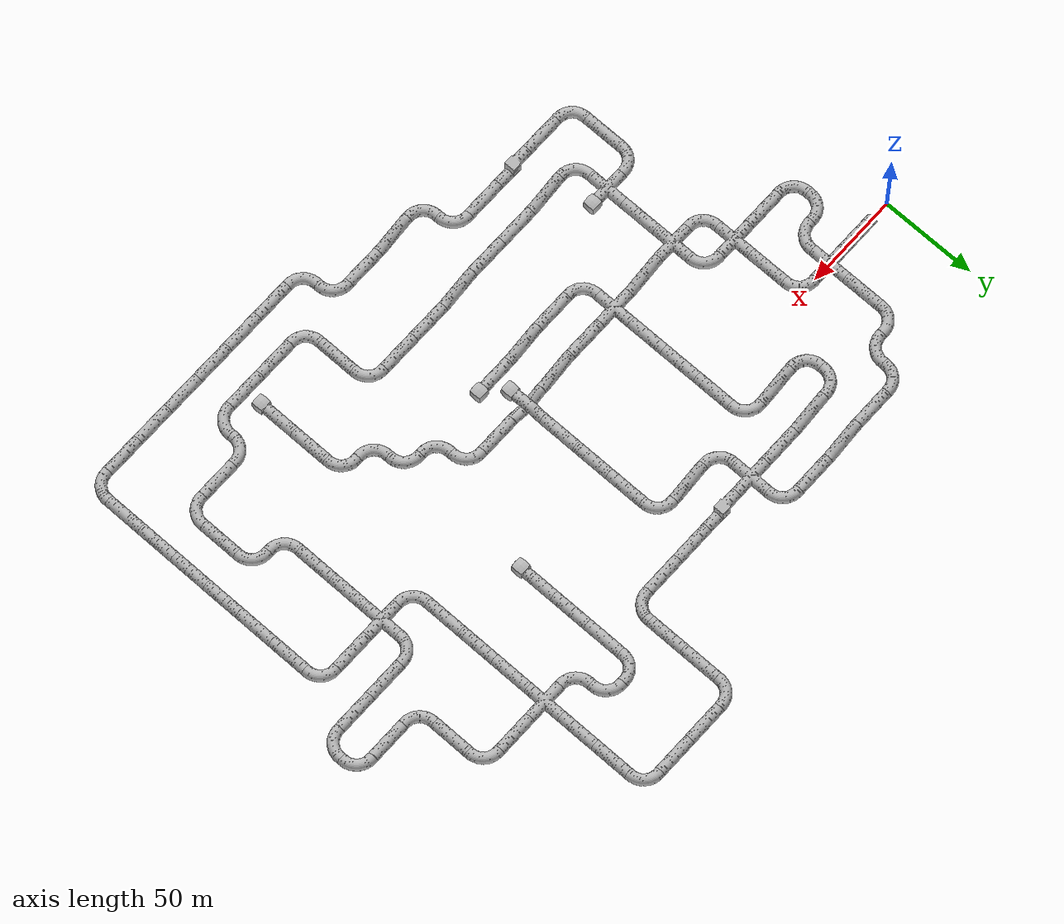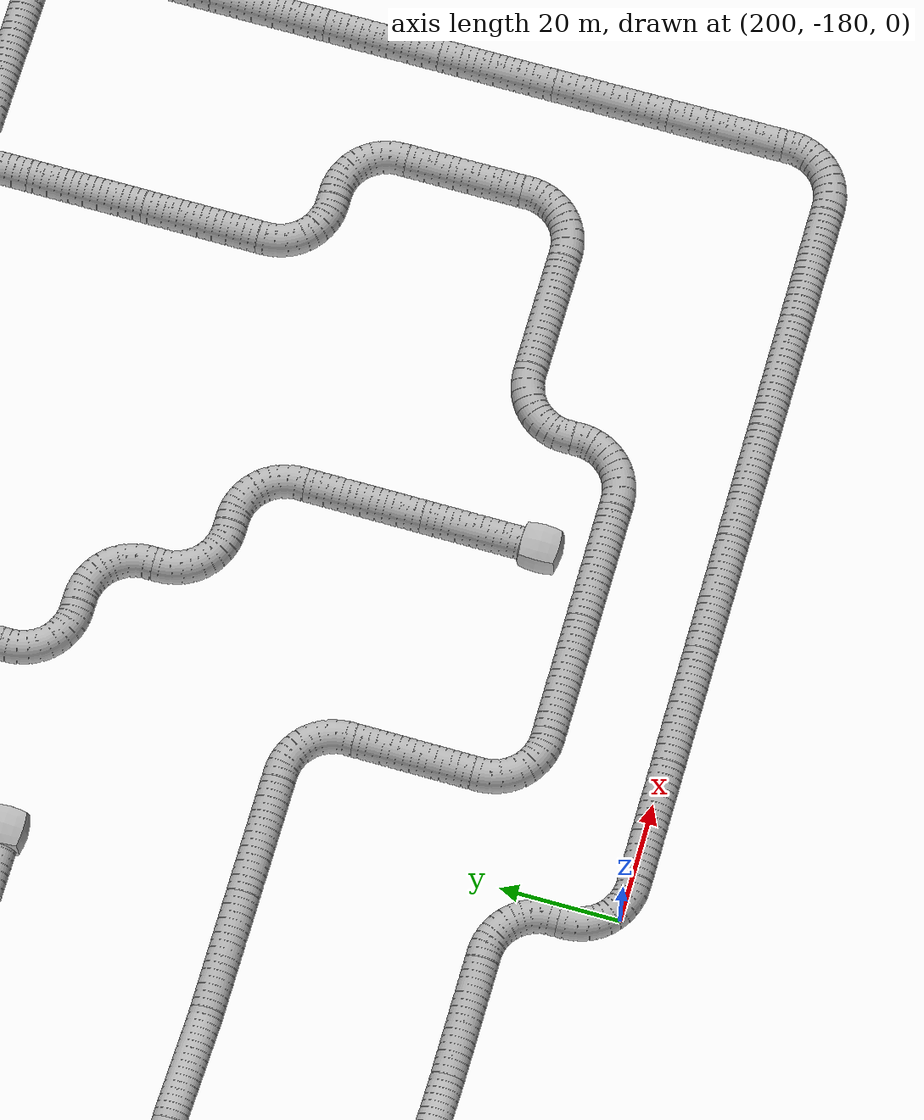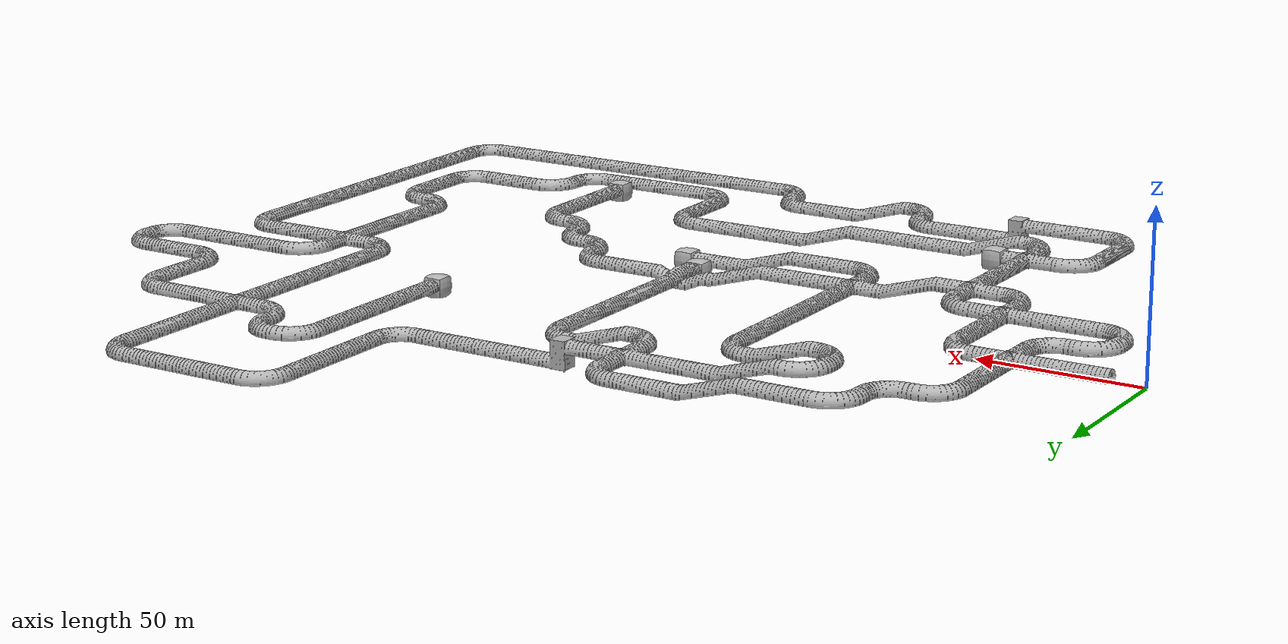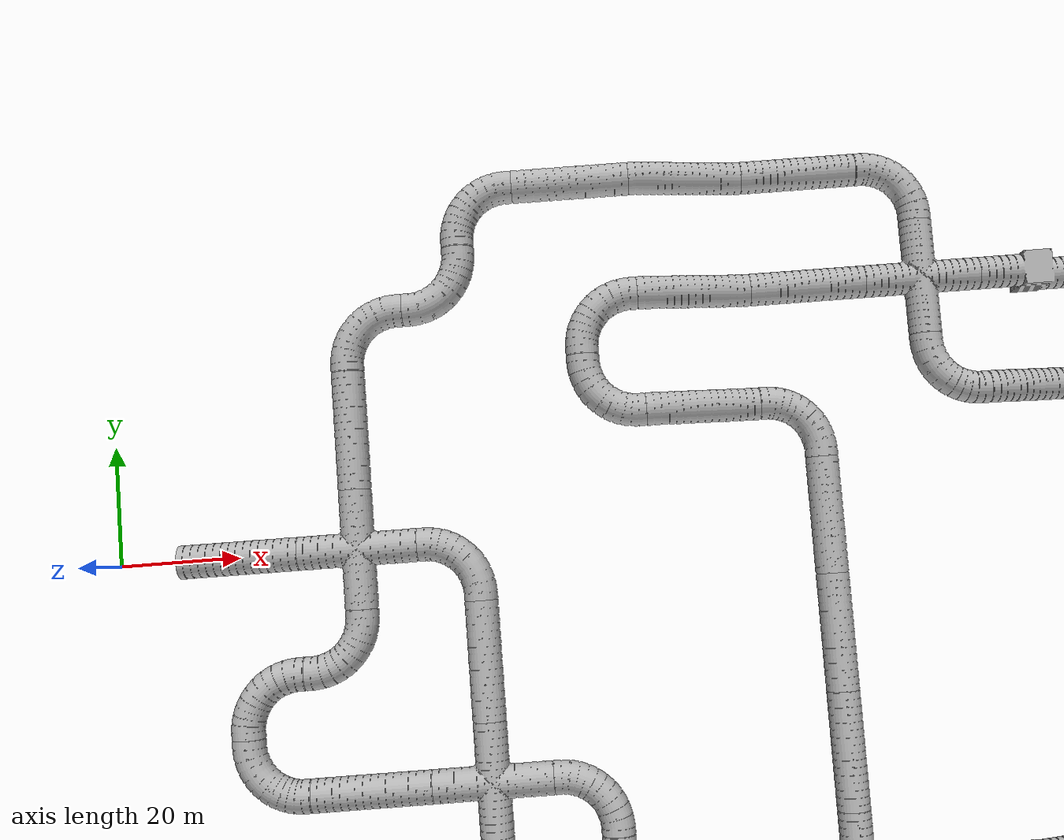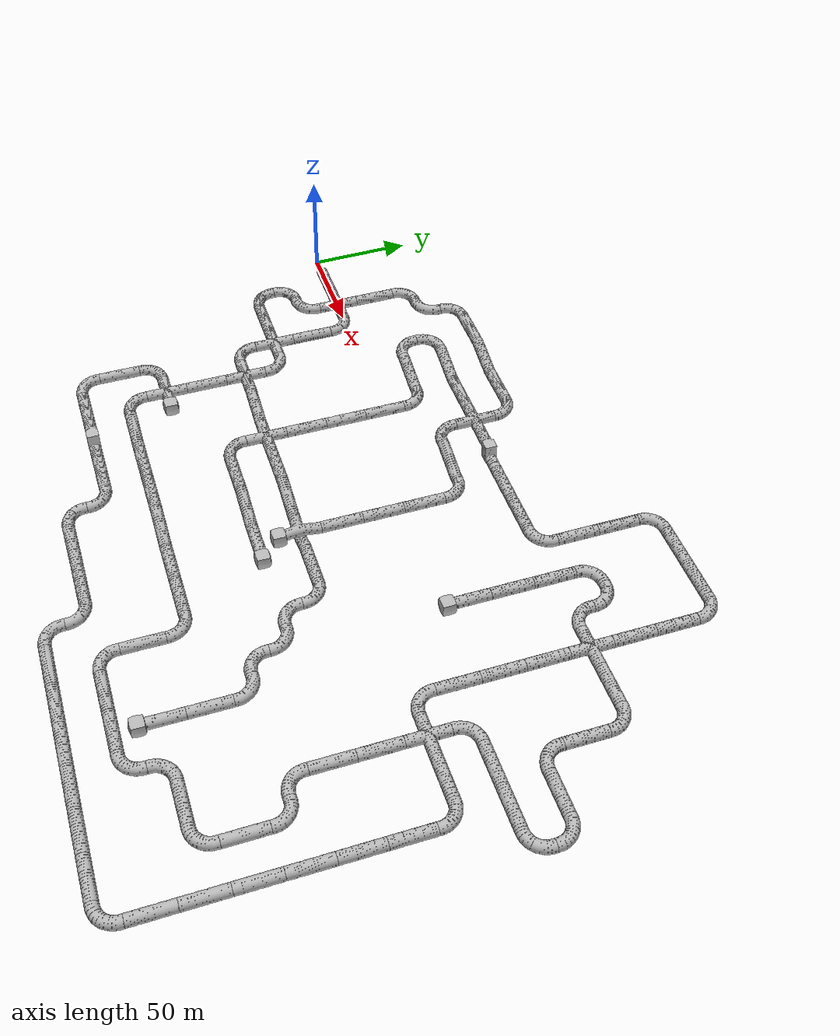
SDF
<sdf version="1.6">
 <world name="tunnel_practice_2">
  <physics name="default_physics" type="ode">
   <max_step_size>0.005</max_step_size>
   <real_time_factor>1.0</real_time_factor>
   <real_time_update_rate>200</real_time_update_rate>
   <ode>
    <solver><type>quick</type><iters>200</iters></solver>
    <constraints><contact_max_correcting_vel>1.0</contact_max_correcting_vel></constraints>
   </ode>
  </physics>
  <scene>
   <ambient>0.2 0.2 0.2 1.0</ambient>
   <background>0.34 0.39 0.43 1.0</background>
   <grid>false</grid>
   <origin_visual>false</origin_visual>
  </scene>
  <light name="user_spot_light_0" type="spot">
   <pose>12 0 15 0 0.65 0</pose>
   <diffuse>1 1 1 1</diffuse>
   <specular>0.1 0.1 0.1 1</specular>
   <direction>0 0 -1</direction>
   <attenuation>
    <range>30</range>
    <constant>0.001</constant>
    <linear>0.01</linear>
    <quadratic>0.000</quadratic>
   </attenuation>
   <spot><inner_angle>0.0</inner_angle><outer_angle>1.5</outer_angle><falloff>0.01</falloff></spot>
  </light>
  <include><name>artifact_origin</name><pose>2 4 0.5 0 0 0</pose><uri>model://fiducial</uri></include>
  <include><name>backpack_1</name><pose>38 33 0 0 0 0</pose><uri>model://Backpack</uri></include>
  <include><name>toolbox_1</name><pose>121 62.2 -5 0 0 0.1</pose><uri>model://Toolbox</uri></include>
  <include>
   <name>fire_extinguisher_1</name>
   <pose>145 -62 -5 0 0 0.2</pose>
   <uri>model://Extinguisher</uri>
  </include>
  <include><name>valve_1</name><pose>165 -62 -9 0 0 3.14159</pose><uri>model://Valve</uri></include>
  <include><name>radio_1</name><pose>200 -117.9 -10 0 0 0.6</pose><uri>model://Radio</uri></include>
  <include><name>duct_1</name><pose>220 -180 -7.1 0 -1.5708 -1.5708</pose><uri>model://Duct</uri></include>
  <include>
   <name>electrical_box_1</name>
   <pose>242 0 -10 0 0 -0.2</pose>
   <uri>model://Electrical Box</uri>
  </include>
  <include><name>cell_phone_1</name><pose>262 -145 -9.997 1.57 0 -0.3</pose><uri>model://Phone</uri></include>
  <include><name>backpack_2</name><pose>340 -2.1 -10 0 0 -0.4</pose><uri>model://Backpack</uri></include>
  <include><name>radio_2</name><pose>342 -140 -10 0 0 -0.6</pose><uri>model://Radio</uri></include>
  <include><uri>model://tunnel_tile_5</uri><name>tile_20_1</name><pose>20 0 0 0 0 1.5708</pose></include>
  <include><uri>model://tunnel_tile_2</uri><name>tile_20_2</name><pose>20 -20 0 0 0 0</pose></include>
  <include><uri>model://tunnel_tile_2</uri><name>tile_20_3</name><pose>20 -40 0 0 0 1.5708</pose></include>
  <include><uri>model://tunnel_tile_2</uri><name>tile_40_1</name><pose>40 40 0 0 0 0</pose></include>
  <include><uri>model://tunnel_tile_5</uri><name>tile_40_2</name><pose>40 20 0 0 0 0</pose></include>
  <include><uri>model://tunnel_tile_1</uri><name>tile_40_3</name><pose>40 0 0 0 0 0</pose></include>
  <include><uri>model://tunnel_tile_2</uri><name>tile_40_4</name><pose>40 -20 0 0 0 3.14159</pose></include>
  <include><uri>model://tunnel_tile_5</uri><name>tile_40_5</name><pose>40 -40 0 0 0 1.5708</pose></include>
  <include><uri>model://tunnel_tile_2</uri><name>tile_60_1</name><pose>60 60 0 0 0 0</pose></include>
  <include><uri>model://tunnel_tile_2</uri><name>tile_60_2</name><pose>60 40 0 0 0 3.14159</pose></include>
  <include><uri>model://tunnel_tile_2</uri><name>tile_60_3</name><pose>60 0 0 0 0 -1.5708</pose></include>
  <include><uri>model://tunnel_tile_5</uri><name>tile_60_4</name><pose>60 -20 0 0 0 0</pose></include>
  <include><uri>model://tunnel_tile_1</uri><name>tile_60_5</name><pose>60 -40 0 0 0 0</pose></include>
  <include><uri>model://tunnel_tile_2</uri><name>tile_60_6</name><pose>60 -60 0 0 0 1.5708</pose></include>
  <include><uri>model://tunnel_tile_2</uri><name>tile_60_7</name><pose>60 -100 0 0 0 0</pose></include>
  <include><uri>model://tunnel_tile_5</uri><name>tile_60_8</name><pose>60 -120 0 0 0 0</pose></include>
  <include><uri>model://tunnel_tile_2</uri><name>tile_60_9</name><pose>60 -140 0 0 0 1.5708</pose></include>
  <include><uri>model://tunnel_tile_5</uri><name>tile_80_1</name><pose>80 60 0 0 0 1.5708</pose></include>
  <include><uri>model://tunnel_tile_2</uri><name>tile_80_2</name><pose>80 40 0 0 0 0</pose></include>
  <include><uri>model://tunnel_tile_2</uri><name>tile_80_3</name><pose>80 20 0 0 0 1.5708</pose></include>
  <include><uri>model://tunnel_tile_2</uri><name>tile_80_4</name><pose>80 -40 0 0 0 -1.5708</pose></include>
  <include><uri>model://tunnel_tile_1</uri><name>tile_80_5</name><pose>80 -60 0 0 0 0</pose></include>
  <include><uri>model://tunnel_tile_5</uri><name>tile_80_6</name><pose>80 -80 0 0 0 0</pose></include>
  <include><uri>model://tunnel_tile_1</uri><name>tile_80_7</name><pose>80 -100 0 0 0 0</pose></include>
  <include><uri>model://tunnel_tile_2</uri><name>tile_80_8</name><pose>80 -120 0 0 0 1.5708</pose></include>
  <include><uri>model://tunnel_tile_5</uri><name>tile_80_9</name><pose>80 -140 0 0 0 1.5708</pose></include>
  <include><uri>model://tunnel_tile_6</uri><name>tile_100_1</name><pose>100 60 -5 0 0 1.5708</pose></include>
  <include><uri>model://tunnel_tile_6</uri><name>tile_100_2</name><pose>100 40 -5 0 0 1.5708</pose></include>
  <include><uri>model://tunnel_tile_6</uri><name>tile_100_3</name><pose>100 20 -5 0 0 1.5708</pose></include>
  <include><uri>model://tunnel_tile_6</uri><name>tile_100_4</name><pose>100 -60 -5 0 0 1.5708</pose></include>
  <include><uri>model://tunnel_tile_6</uri><name>tile_100_5</name><pose>100 -120 -5 0 0 1.5708</pose></include>
  <include><uri>model://tunnel_tile_7</uri><name>tile_100_6</name><pose>100 -140 -5 0 0 1.5708</pose></include>
  <include><uri>model://tunnel_tile_5</uri><name>tile_120_1</name><pose>120 60 -5 0 0 1.5708</pose></include>
  <include><uri>model://tunnel_tile_5</uri><name>tile_120_2</name><pose>120 40 -5 0 0 1.5708</pose></include>
  <include><uri>model://tunnel_tile_2</uri><name>tile_120_3</name><pose>120 20 -5 0 0 -1.5708</pose></include>
  <include><uri>model://tunnel_tile_5</uri><name>tile_120_4</name><pose>120 0 -5 0 0 0</pose></include>
  <include><uri>model://tunnel_tile_5</uri><name>tile_120_5</name><pose>120 -20 -5 0 0 0</pose></include>
  <include><uri>model://tunnel_tile_5</uri><name>tile_120_6</name><pose>120 -40 -5 0 0 0</pose></include>
  <include><uri>model://tunnel_tile_1</uri><name>tile_120_7</name><pose>120 -60 -5 0 0 0</pose></include>
  <include><uri>model://tunnel_tile_2</uri><name>tile_120_8</name><pose>120 -80 -5 0 0 1.5708</pose></include>
  <include><uri>model://tunnel_tile_5</uri><name>tile_120_9</name><pose>120 -120 -5 0 0 1.5708</pose></include>
  <include><uri>model://tunnel_tile_5</uri><name>tile_120_10</name><pose>120 -140 -5 0 0 1.5708</pose></include>
  <include><uri>model://tunnel_tile_2</uri><name>tile_140_1</name><pose>140 60 -5 0 0 -1.5708</pose></include>
  <include><uri>model://tunnel_tile_1</uri><name>tile_140_2</name><pose>140 40 -5 0 0 0</pose></include>
  <include><uri>model://tunnel_tile_2</uri><name>tile_140_3</name><pose>140 20 -5 0 0 1.5708</pose></include>
  <include><uri>model://tunnel_tile_5</uri><name>tile_140_4</name><pose>140 -60 -5 0 0 1.5708</pose></include>
  <include><uri>model://tunnel_tile_5</uri><name>tile_140_5</name><pose>140 -80 -5 0 0 1.5708</pose></include>
  <include><uri>model://tunnel_tile_5</uri><name>tile_140_6</name><pose>140 -120 -5 0 0 1.5708</pose></include>
  <include><uri>model://tunnel_tile_2</uri><name>tile_140_7</name><pose>140 -140 -5 0 0 -1.5708</pose></include>
  <include><uri>model://tunnel_tile_2</uri><name>tile_140_8</name><pose>140 -160 -5 0 0 1.5708</pose></include>
  <include><uri>model://tunnel_tile_7</uri><name>tile_160_1</name><pose>160 40 -10 0 0 1.5708</pose></include>
  <include><uri>model://tunnel_tile_6</uri><name>tile_160_2</name><pose>160 20 -10 0 0 1.5708</pose></include>
  <include><uri>model://tunnel_tile_6</uri><name>tile_160_3</name><pose>160 -60 -10 0 0 1.5708</pose></include>
  <include><uri>model://tunnel_tile_6</uri><name>tile_160_4</name><pose>160 -80 -10 0 0 1.5708</pose></include>
  <include><uri>model://tunnel_tile_6</uri><name>tile_160_5</name><pose>160 -120 -10 0 0 1.5708</pose></include>
  <include><uri>model://tunnel_tile_6</uri><name>tile_160_6</name><pose>160 -160 -10 0 0 1.5708</pose></include>
  <include><uri>model://tunnel_tile_5</uri><name>tile_180_1</name><pose>180 40 -10 0 0 1.5708</pose></include>
  <include><uri>model://tunnel_tile_2</uri><name>tile_180_2</name><pose>180 20 -10 0 0 -1.5708</pose></include>
  <include><uri>model://tunnel_tile_5</uri><name>tile_180_3</name><pose>180 0 -10 0 0 0</pose></include>
  <include><uri>model://tunnel_tile_5</uri><name>tile_180_4</name><pose>180 -20 -10 0 0 0</pose></include>
  <include><uri>model://tunnel_tile_5</uri><name>tile_180_5</name><pose>180 -40 -10 0 0 0</pose></include>
  <include><uri>model://tunnel_tile_4</uri><name>tile_180_6</name><pose>180 -60 -10 0 0 0</pose></include>
  <include><uri>model://tunnel_tile_5</uri><name>tile_180_7</name><pose>180 -80 -10 0 0 1.5708</pose></include>
  <include><uri>model://tunnel_tile_5</uri><name>tile_180_8</name><pose>180 -120 -10 0 0 1.5708</pose></include>
  <include><uri>model://tunnel_tile_5</uri><name>tile_180_9</name><pose>180 -160 -10 0 0 1.5708</pose></include>
  <include><uri>model://tunnel_tile_5</uri><name>tile_200_1</name><pose>200 40 -10 0 0 1.5708</pose></include>
  <include><uri>model://tunnel_tile_5</uri><name>tile_200_2</name><pose>200 -60 -10 0 0 1.5708</pose></include>
  <include><uri>model://tunnel_tile_5</uri><name>tile_200_3</name><pose>200 -120 -10 0 0 1.5708</pose></include>
  <include>
   <uri>model://tunnel_tile_2</uri>
   <name>tile_200_4</name>
   <pose>200 -160 -10 0 0 -1.5708</pose>
  </include>
  <include><uri>model://tunnel_tile_2</uri><name>tile_200_5</name><pose>200 -180 -10 0 0 1.5708</pose></include>
  <include><uri>model://tunnel_tile_2</uri><name>tile_220_1</name><pose>220 100 -10 0 0 0</pose></include>
  <include><uri>model://tunnel_tile_5</uri><name>tile_220_2</name><pose>220 80 -10 0 0 0</pose></include>
  <include><uri>model://tunnel_tile_5</uri><name>tile_220_3</name><pose>220 60 -10 0 0 0</pose></include>
  <include><uri>model://tunnel_tile_2</uri><name>tile_220_4</name><pose>220 40 -10 0 0 3.14159</pose></include>
  <include><uri>model://tunnel_tile_2</uri><name>tile_220_5</name><pose>220 -60 -10 0 0 -1.5708</pose></include>
  <include><uri>model://tunnel_tile_2</uri><name>tile_220_6</name><pose>220 -80 -10 0 0 1.5708</pose></include>
  <include>
   <uri>model://tunnel_tile_2</uri>
   <name>tile_220_7</name>
   <pose>220 -120 -10 0 0 -1.5708</pose>
  </include>
  <include><uri>model://tunnel_tile_5</uri><name>tile_220_8</name><pose>220 -140 -10 0 0 0</pose></include>
  <include><uri>model://tunnel_tile_2</uri><name>tile_220_9</name><pose>220 -160 -10 0 0 1.5708</pose></include>
  <include>
   <uri>model://tunnel_tile_5</uri>
   <name>tile_220_10</name>
   <pose>220 -180 -10 0 0 1.5708</pose>
  </include>
  <include><uri>model://tunnel_tile_5</uri><name>tile_240_1</name><pose>240 100 -10 0 0 1.5708</pose></include>
  <include><uri>model://tunnel_tile_2</uri><name>tile_240_2</name><pose>240 60 -10 0 0 0</pose></include>
  <include><uri>model://tunnel_tile_5</uri><name>tile_240_3</name><pose>240 40 -10 0 0 0</pose></include>
  <include><uri>model://tunnel_tile_5</uri><name>tile_240_4</name><pose>240 20 -10 0 0 0</pose></include>
  <include><uri>model://tunnel_tile_5</uri><name>tile_240_5</name><pose>240 0 -10 0 0 0</pose></include>
  <include><uri>model://tunnel_tile_2</uri><name>tile_240_6</name><pose>240 -80 -10 0 0 -1.5708</pose></include>
  <include><uri>model://tunnel_tile_2</uri><name>tile_240_7</name><pose>240 -100 -10 0 0 1.5708</pose></include>
  <include><uri>model://tunnel_tile_5</uri><name>tile_240_8</name><pose>240 -160 -10 0 0 1.5708</pose></include>
  <include><uri>model://tunnel_tile_5</uri><name>tile_240_9</name><pose>240 -180 -10 0 0 1.5708</pose></include>
  <include><uri>model://tunnel_tile_5</uri><name>tile_260_1</name><pose>260 100 -10 0 0 1.5708</pose></include>
  <include><uri>model://tunnel_tile_2</uri><name>tile_260_2</name><pose>260 60 -10 0 0 -1.5708</pose></include>
  <include><uri>model://tunnel_tile_2</uri><name>tile_260_3</name><pose>260 40 -10 0 0 1.5708</pose></include>
  <include>
   <uri>model://tunnel_tile_2</uri>
   <name>tile_260_4</name>
   <pose>260 -100 -10 0 0 -1.5708</pose>
  </include>
  <include><uri>model://tunnel_tile_5</uri><name>tile_260_5</name><pose>260 -120 -10 0 0 0</pose></include>
  <include><uri>model://tunnel_tile_5</uri><name>tile_260_6</name><pose>260 -140 -10 0 0 0</pose></include>
  <include><uri>model://tunnel_tile_5</uri><name>tile_260_7</name><pose>260 -160 -10 0 0 1.5708</pose></include>
  <include><uri>model://tunnel_tile_5</uri><name>tile_260_8</name><pose>260 -180 -10 0 0 1.5708</pose></include>
  <include><uri>model://tunnel_tile_2</uri><name>tile_280_1</name><pose>280 100 -10 0 0 -1.5708</pose></include>
  <include><uri>model://tunnel_tile_5</uri><name>tile_280_2</name><pose>280 80 -10 0 0 0</pose></include>
  <include><uri>model://tunnel_tile_5</uri><name>tile_280_3</name><pose>280 60 -10 0 0 0</pose></include>
  <include><uri>model://tunnel_tile_1</uri><name>tile_280_4</name><pose>280 40 -10 0 0 0</pose></include>
  <include><uri>model://tunnel_tile_5</uri><name>tile_280_5</name><pose>280 20 -10 0 0 0</pose></include>
  <include><uri>model://tunnel_tile_5</uri><name>tile_280_6</name><pose>280 0 -10 0 0 0</pose></include>
  <include><uri>model://tunnel_tile_5</uri><name>tile_280_7</name><pose>280 -20 -10 0 0 0</pose></include>
  <include><uri>model://tunnel_tile_2</uri><name>tile_280_8</name><pose>280 -40 -10 0 0 1.5708</pose></include>
  <include><uri>model://tunnel_tile_2</uri><name>tile_280_9</name><pose>280 -140 -10 0 0 0</pose></include>
  <include>
   <uri>model://tunnel_tile_2</uri>
   <name>tile_280_10</name>
   <pose>280 -160 -10 0 0 3.14159</pose>
  </include>
  <include>
   <uri>model://tunnel_tile_5</uri>
   <name>tile_280_11</name>
   <pose>280 -180 -10 0 0 1.5708</pose>
  </include>
  <include><uri>model://tunnel_tile_5</uri><name>tile_300_1</name><pose>300 40 -10 0 0 1.5708</pose></include>
  <include><uri>model://tunnel_tile_2</uri><name>tile_300_2</name><pose>300 -20 -10 0 0 0</pose></include>
  <include><uri>model://tunnel_tile_1</uri><name>tile_300_3</name><pose>300 -40 -10 0 0 0</pose></include>
  <include><uri>model://tunnel_tile_5</uri><name>tile_300_4</name><pose>300 -60 -10 0 0 0</pose></include>
  <include><uri>model://tunnel_tile_5</uri><name>tile_300_5</name><pose>300 -80 -10 0 0 0</pose></include>
  <include><uri>model://tunnel_tile_2</uri><name>tile_300_6</name><pose>300 -100 -10 0 0 1.5708</pose></include>
  <include><uri>model://tunnel_tile_5</uri><name>tile_300_7</name><pose>300 -140 -10 0 0 1.5708</pose></include>
  <include><uri>model://tunnel_tile_5</uri><name>tile_300_8</name><pose>300 -180 -10 0 0 1.5708</pose></include>
  <include><uri>model://tunnel_tile_2</uri><name>tile_320_1</name><pose>320 40 -10 0 0 -1.5708</pose></include>
  <include><uri>model://tunnel_tile_5</uri><name>tile_320_2</name><pose>320 20 -10 0 0 0</pose></include>
  <include><uri>model://tunnel_tile_2</uri><name>tile_320_3</name><pose>320 0 -10 0 0 1.5708</pose></include>
  <include><uri>model://tunnel_tile_5</uri><name>tile_320_4</name><pose>320 -20 -10 0 0 1.5708</pose></include>
  <include><uri>model://tunnel_tile_5</uri><name>tile_320_5</name><pose>320 -40 -10 0 0 1.5708</pose></include>
  <include>
   <uri>model://tunnel_tile_2</uri>
   <name>tile_320_6</name>
   <pose>320 -100 -10 0 0 -1.5708</pose>
  </include>
  <include><uri>model://tunnel_tile_5</uri><name>tile_320_7</name><pose>320 -120 -10 0 0 0</pose></include>
  <include>
   <uri>model://tunnel_tile_2</uri>
   <name>tile_320_8</name>
   <pose>320 -140 -10 0 0 3.14159</pose>
  </include>
  <include><uri>model://tunnel_tile_5</uri><name>tile_320_9</name><pose>320 -180 -10 0 0 1.5708</pose></include>
  <include><uri>model://tunnel_tile_5</uri><name>tile_340_1</name><pose>340 0 -10 0 0 1.5708</pose></include>
  <include><uri>model://tunnel_tile_5</uri><name>tile_340_2</name><pose>340 -20 -10 0 0 1.5708</pose></include>
  <include><uri>model://tunnel_tile_2</uri><name>tile_340_3</name><pose>340 -40 -10 0 0 -1.5708</pose></include>
  <include><uri>model://tunnel_tile_5</uri><name>tile_340_4</name><pose>340 -60 -10 0 0 0</pose></include>
  <include><uri>model://tunnel_tile_5</uri><name>tile_340_5</name><pose>340 -80 -10 0 0 0</pose></include>
  <include><uri>model://tunnel_tile_5</uri><name>tile_340_6</name><pose>340 -100 -10 0 0 0</pose></include>
  <include><uri>model://tunnel_tile_5</uri><name>tile_340_7</name><pose>340 -120 -10 0 0 0</pose></include>
  <include><uri>model://tunnel_tile_5</uri><name>tile_340_8</name><pose>340 -140 -10 0 0 0</pose></include>
  <include><uri>model://tunnel_tile_5</uri><name>tile_340_9</name><pose>340 -160 -10 0 0 0</pose></include>
  <include>
   <uri>model://tunnel_tile_2</uri>
   <name>tile_340_10</name>
   <pose>340 -180 -10 0 0 3.14159</pose>
  </include>
  <include><uri>model://tunnel_tile_2</uri><name>tile_360_1</name><pose>360 0 -10 0 0 -1.5708</pose></include>
  <include><uri>model://tunnel_tile_2</uri><name>tile_360_2</name><pose>360 -20 -10 0 0 3.14159</pose></include>
  <include><uri>model://tunnel_tile_blocker</uri><name>blocker_90_1</name><pose>90 -100 0 0 0 0</pose></include>
  <include>
   <uri>model://tunnel_tile_blocker</uri>
   <name>blocker_180_1</name>
   <pose>180 -70 -10 0 0 0</pose>
  </include>
  <include>
   <uri>model://tunnel_tile_blocker</uri>
   <name>blocker_190_1</name>
   <pose>190 -80 -10 0 0 0</pose>
  </include>
  <include>
   <uri>model://tunnel_tile_blocker</uri>
   <name>blocker_240_1</name>
   <pose>240 -10 -10 0 0 0</pose>
  </include>
  <include>
   <uri>model://tunnel_tile_blocker</uri>
   <name>blocker_260_1</name>
   <pose>260 -150 -10 0 0 0</pose>
  </include>
 </world>
</sdf>

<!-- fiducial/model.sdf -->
<sdf version='1.6'>
  <model name='fiducial'>
    <static>true</static>
    <link name='link'>
    </link>
  </model>
</sdf>

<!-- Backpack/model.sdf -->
<sdf version='1.6'>
  <model name='Backpack'>
    <static>true</static>
    <link name='link'>
      <collision name='collision'>
        <geometry>
          <mesh>
            <uri>model://Backpack/meshes/Backpack.dae</uri>
          </mesh>
        </geometry>
      </collision>
      <visual name='visual'>
        <geometry>
          <mesh>
            <uri>model://Backpack/meshes/Backpack.dae</uri>
          </mesh>
        </geometry>
      </visual>
    </link>
  </model>
</sdf>

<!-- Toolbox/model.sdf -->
<sdf version='1.6'>
  <model name='Toolbox'>
    <static>true</static>
    <link name='link'>
      <collision name='collision'>
        <geometry>
          <mesh>
            <uri>model://Toolbox/meshes/Toolbox.dae</uri>
          </mesh>
        </geometry>
      </collision>
      <visual name='visual'>
        <geometry>
          <mesh>
            <uri>model://Toolbox/meshes/Toolbox.dae</uri>
          </mesh>
        </geometry>
      </visual>
    </link>
  </model>
</sdf>

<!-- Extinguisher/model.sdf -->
<sdf version='1.6'>
  <model name='Extinguisher'>
    <static>true</static>
    <link name='link'>
      <collision name='collision'>
        <geometry>
          <mesh>
            <uri>model://Extinguisher/meshes/Extinguisher.dae</uri>
          </mesh>
        </geometry>
      </collision>
      <visual name='visual'>
        <geometry>
          <mesh>
            <uri>model://Extinguisher/meshes/Extinguisher.dae</uri>
          </mesh>
        </geometry>
      </visual>
    </link>
  </model>
</sdf>

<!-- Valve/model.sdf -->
<sdf version='1.6'>
  <model name='Valve'>
    <static>true</static>
    <link name='link'>
      <collision name='collision'>
        <geometry>
          <mesh>
            <uri>model://Valve/meshes/Valve.dae</uri>
          </mesh>
        </geometry>
      </collision>
      <visual name='visual'>
        <geometry>
          <mesh>
            <uri>model://Valve/meshes/Valve.dae</uri>
          </mesh>
        </geometry>
      </visual>
    </link>
  </model>
</sdf>

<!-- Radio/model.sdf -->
<sdf version='1.6'>
  <model name='Radio'>
    <static>true</static>
    <link name='link'>
      <collision name='collision'>
        <geometry>
          <mesh>
            <uri>model://Radio/meshes/Radio.dae</uri>
          </mesh>
        </geometry>
      </collision>
      <visual name='visual'>
        <geometry>
          <mesh>
            <uri>model://Radio/meshes/Radio.dae</uri>
          </mesh>
        </geometry>
        <plugin name='light_source_visualize' filename='libLightVisualPlugin.so'>
          <light>
            <id>light_source</id>
            <visualize>false</visualize>
          </light>
        </plugin>
      </visual>
      <light name='light_source' type='point'>
        <pose>0.0137 -0.02 0.109 0 0 0</pose>
        <attenuation>
          <range>2.0</range>
          <constant>0.2</constant>
          <linear>0.10</linear>
          <quadratic>0.1</quadratic>
        </attenuation>
        <diffuse>1 0 0 1</diffuse>
        <specular>1 0 0 1</specular>
      </light>
    </link>

    <plugin name='light_control' filename='libFlashLightPlugin.so'>
      <light>
        <id>link/light_source</id>
        <duration>1.0</duration>
        <interval>3.0</interval>
        <color>1 0 0</color>
      </light>
    </plugin>

  </model>
</sdf>

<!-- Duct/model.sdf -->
<sdf version='1.6'>
  <model name='Duct'>
    <static>true</static>
    <link name='link'>
      <collision name='collision'>
        <geometry>
          <mesh>
            <uri>model://Duct/meshes/Duct.dae</uri>
          </mesh>
        </geometry>
      </collision>
      <visual name='visual'>
        <geometry>
          <mesh>
            <uri>model://Duct/meshes/Duct.dae</uri>
          </mesh>
        </geometry>
      </visual>
    </link>
  </model>
</sdf>

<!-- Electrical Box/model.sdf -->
<sdf version='1.6'>
  <model name='Electrical Box'>
    <static>true</static>
    <link name='link'>
      <pose>0 0 0 1.57 3.14159 0</pose>
      <collision name='collision'>
        <geometry>
          <mesh>
            <uri>model://Electrical Box/meshes/Electrical Box.dae</uri>
          </mesh>
        </geometry>
      </collision>
      <visual name='visual'>
        <geometry>
          <mesh>
            <uri>model://Electrical Box/meshes/Electrical Box.dae</uri>
          </mesh>
        </geometry>
      </visual>
    </link>
  </model>
</sdf>

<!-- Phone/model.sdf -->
<sdf version='1.6'>
  <model name='Phone'>
    <static>true</static>
    <link name='link'>
      <collision name='collision'>
        <geometry>
          <mesh>
            <uri>model://Phone/meshes/Phone.dae</uri>
          </mesh>
        </geometry>
      </collision>
      <visual name='visual'>
        <geometry>
          <mesh>
            <uri>model://Phone/meshes/Phone.dae</uri>
          </mesh>
        </geometry>
      </visual>
    </link>
  </model>
</sdf>

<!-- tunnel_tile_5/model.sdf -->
<sdf version="1.6">
  <model name="tunnel_tile_5">
    <static>true</static>
    <link name="link">
      <collision name="collision">
        <geometry>
          <mesh>
            <uri>model://tunnel_tile_5/meshes/tunnel_tile_5.dae</uri>
          </mesh>
        </geometry>
      </collision>
      <collision name="collision_ground">
        <geometry>
          <box>
            <size>5 20 0.001</size>
          </box>
        </geometry>
      </collision>
      <visual name="visual">
        <geometry>
          <mesh>
            <uri>model://tunnel_tile_5/meshes/tunnel_tile_5.dae</uri>
          </mesh>
        </geometry>
      </visual>
    </link>
  </model>
</sdf>

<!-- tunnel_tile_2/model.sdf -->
<sdf version="1.6">
  <model name="tunnel_tile_2">
    <static>true</static>
    <link name="link">
      <collision name="collision">
        <geometry>
          <mesh>
            <uri>model://tunnel_tile_2/meshes/tunnel_tile_2.dae</uri>
          </mesh>
        </geometry>
      </collision>
      <collision name="collision_ground">
        <pose>3.5 -3.5 0 0 0 0</pose>
        <geometry>
          <box>
            <size>13 13 0.001</size>
          </box>
        </geometry>
      </collision>
      <visual name="visual">
        <geometry>
          <mesh>
            <uri>model://tunnel_tile_2/meshes/tunnel_tile_2.dae</uri>
          </mesh>
        </geometry>
      </visual>
    </link>
  </model>
</sdf>

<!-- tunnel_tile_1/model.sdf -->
<sdf version="1.6">
  <model name="tunnel_tile_1">
    <static>true</static>
    <link name="link">
      <collision name="collision">
        <geometry>
          <mesh>
            <uri>model://tunnel_tile_1/meshes/tunnel_tile_1.dae</uri>
          </mesh>
        </geometry>
      </collision>
      <collision name="collision_ground">
        <geometry>
          <box>
            <size>20 20 0.001</size>
          </box>
        </geometry>
      </collision>
      <visual name="visual">
        <geometry>
          <mesh>
            <uri>model://tunnel_tile_1/meshes/tunnel_tile_1.dae</uri>
          </mesh>
        </geometry>
      </visual>
    </link>
  </model>
</sdf>

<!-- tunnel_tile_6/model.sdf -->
<sdf version="1.6">
  <model name="tunnel_tile_6">
    <static>true</static>
    <link name="link">
      <pose>0 0 0 0 0 0</pose>
      <collision name="collision">
        <geometry>
          <mesh>
            <uri>model://tunnel_tile_6/meshes/tunnel_tile_6.dae</uri>
          </mesh>
        </geometry>
      </collision>

      <collision name="collision_ground_1">
        <pose>0 9.323 5 0 0 0</pose>
        <geometry>
          <box>
            <size>6.356 1.354 0.001</size>
          </box>
        </geometry>
      </collision>

      <collision name="collision_ground_2">
        <pose>0 -0.070 2.467 0.2827433 0 0</pose>
        <geometry>
          <box>
            <size>6.356 18.152 0.001</size>
          </box>
        </geometry>
      </collision>

      <collision name="collision_ground_3">
        <pose>0 -9.272 0 0 0 0</pose>
        <geometry>
          <box>
            <size>6.356 1.455 0.001</size>
          </box>
        </geometry>
      </collision>

      <visual name="visual">
        <geometry>
          <mesh>
            <uri>model://tunnel_tile_6/meshes/tunnel_tile_6.dae</uri>
          </mesh>
        </geometry>
      </visual>
    </link>
  </model>
</sdf>

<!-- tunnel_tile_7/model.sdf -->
<sdf version="1.6">
  <model name="tunnel_tile_7">
    <static>true</static>
    <link name="link">
      <collision name="collision">
        <geometry>
          <mesh>
            <uri>model://tunnel_tile_7/meshes/tunnel_tile_7.dae</uri>
          </mesh>
        </geometry>
      </collision>
      <collision name="collision_ground_1">
        <pose>0 6.14028 5 0 0 0</pose>
        <geometry>
          <box>
            <size>6.19538 7.71943 0.001</size>
          </box>
        </geometry>
      </collision>

      <collision name="collision_ground_2">
        <pose>0 2.28057 2.5 0 0 0</pose>
        <geometry>
          <box>
            <size>6.19538 0.001 5</size>
          </box>
        </geometry>
      </collision>
      <collision name="collision_ground_3">
        <pose>0 -3.8572 0 0 0 0</pose>
        <geometry>
          <box>
            <size>6.19538 12.2806 0.001</size>
          </box>
        </geometry>
      </collision>
      <collision name="collision_ground_4">
        <pose>0 -2.42079 6.38525 0 0 0</pose>
        <geometry>
          <box>
            <size>6.19538 0.001 5.69769</size>
          </box>
        </geometry>
      </collision>
      <collision name="collision_ground_5">
        <pose>-2.83306 0.079873 4.58439 0 0 0</pose>
        <geometry>
          <box>
            <size>0.001 5.1333 9.16878</size>
          </box>
        </geometry>
      </collision>
      <collision name="collision_ground_6">
        <pose>2.83306 0.079873 4.58439 0 0 0</pose>
        <geometry>
          <box>
            <size>0.001 5.1333 9.16878</size>
          </box>
        </geometry>
      </collision>
      <collision name="collision_ground_7">
        <pose>0 0.079873 8.72854 0 0 0</pose>
        <geometry>
          <box>
            <size>6.95991 5.1333 0.001</size>
          </box>
        </geometry>
      </collision>

      <visual name="visual">
        <geometry>
          <mesh>
            <uri>model://tunnel_tile_7/meshes/tunnel_tile_7.dae</uri>
          </mesh>
        </geometry>
      </visual>
    </link>
  </model>
</sdf>

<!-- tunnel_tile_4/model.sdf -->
<sdf version="1.6">
  <model name="tunnel_tile_4">
    <static>true</static>
    <link name="link">
      <pose>0 0 0 0 0 0</pose>
      <collision name="collision">
        <geometry>
          <mesh>
            <uri>model://tunnel_tile_4/meshes/tunnel_tile_4.dae</uri>
          </mesh>
        </geometry>
      </collision>

      <collision name="collision_ground_1">
        <pose>0 9.32313 0 0 0 0</pose>
        <geometry>
          <box>
            <size>4.96733 1.35375 0.001</size>
          </box>
        </geometry>
      </collision>

      <collision name="collision_ground_2">
        <pose>0 5.630 0.600 -0.196366994 0 0</pose>
        <geometry>
          <box>
            <size>4.96733 6.1507 0.001</size>
          </box>
        </geometry>
      </collision>

      <collision name="collision_ground_3">
        <pose>0 0 1.2 0 0 0</pose>
        <geometry>
          <box>
            <size>4.96733 5.2175 0.001</size>
          </box>
        </geometry>
      </collision>

      <collision name="collision_ground_4">
        <pose>0 -5.620 0.600000 0.196366994 0 0</pose>
        <geometry>
          <box>
            <size>4.96733 6.1507 0.001</size>
          </box>
        </geometry>
      </collision>

      <collision name="collision_ground_5">
        <pose>0 -9.31813 0 0 0 0</pose>
        <geometry>
          <box>
            <size>4.96733 1.36375 0.001</size>
          </box>
        </geometry>
      </collision>

      <collision name="collision_ground_6">
        <pose>9.32313 0 0 0 0 0</pose>
        <geometry>
          <box>
            <size>1.35375 4.96733 0.001</size>
          </box>
        </geometry>
      </collision>

      <collision name="collision_ground_7">
        <pose>5.630 0 -1.25 0 -0.39287361 0</pose>
        <geometry>
          <box>
            <size>6.53001 4.96733 0.001</size>
          </box>
        </geometry>
      </collision>

      <collision name="collision_ground_8">
        <pose>0 0 -2.5 0 0 0</pose>
        <geometry>
          <box>
            <size>5.2175 4.96733 0.001</size>
          </box>
        </geometry>
      </collision>

      <collision name="collision_ground_9">
        <pose>-5.620 0 -1.25 0 0.39287361 0</pose>
        <geometry>
          <box>
            <size>6.53001 4.96733 0.001</size>
          </box>
        </geometry>
      </collision>

      <collision name="collision_ground_10">
        <pose>-9.31813 0 0 0 0 0</pose>
        <geometry>
          <box>
            <size>1.36375 4.96733 0.001</size>
          </box>
        </geometry>
      </collision>

      <visual name="visual">
        <geometry>
          <mesh>
            <uri>model://tunnel_tile_4/meshes/tunnel_tile_4.dae</uri>
          </mesh>
        </geometry>
      </visual>
    </link>
  </model>
</sdf>

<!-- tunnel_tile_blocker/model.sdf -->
<sdf version="1.6">
  <model name="tunnel_tile_blocker">
    <static>true</static>
    <link name="link">
      <pose>0 0 0 0 0 0</pose>
      <collision name="collision">
        <geometry>
          <mesh>
            <uri>model://tunnel_tile_blocker/meshes/tunnel_tile_blocker.dae</uri>
          </mesh>
        </geometry>
      </collision>
      <visual name="visual">
        <geometry>
          <mesh>
            <uri>model://tunnel_tile_blocker/meshes/tunnel_tile_blocker.dae</uri>
          </mesh>
        </geometry>
      </visual>
    </link>
  </model>
</sdf>
